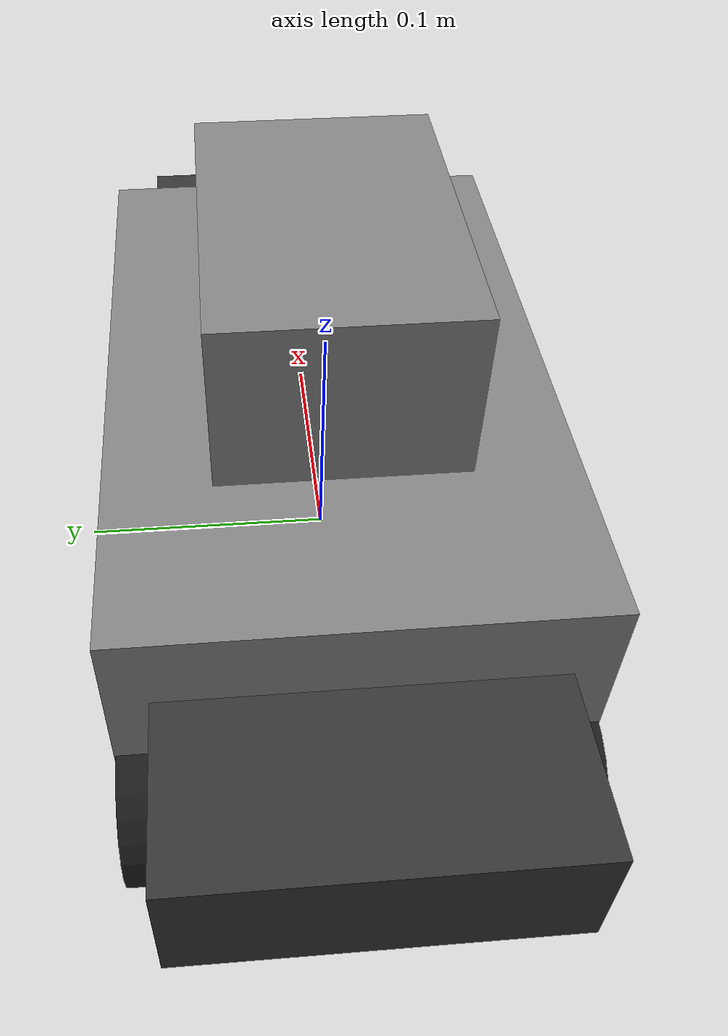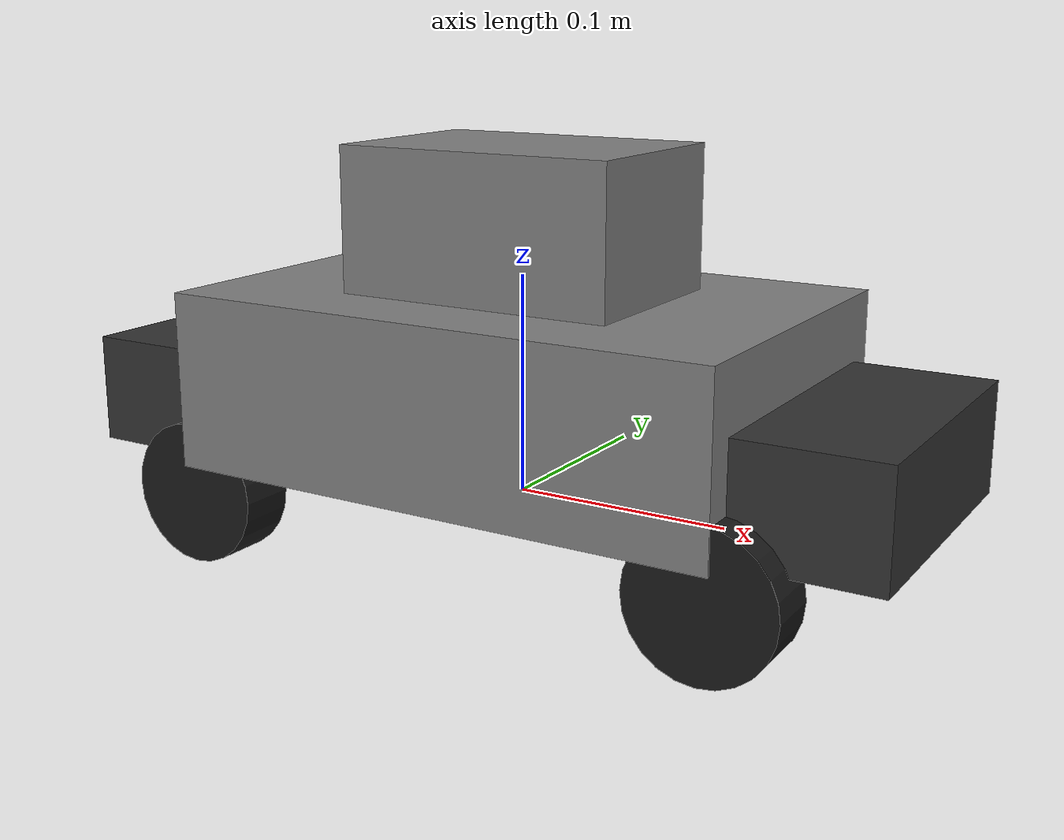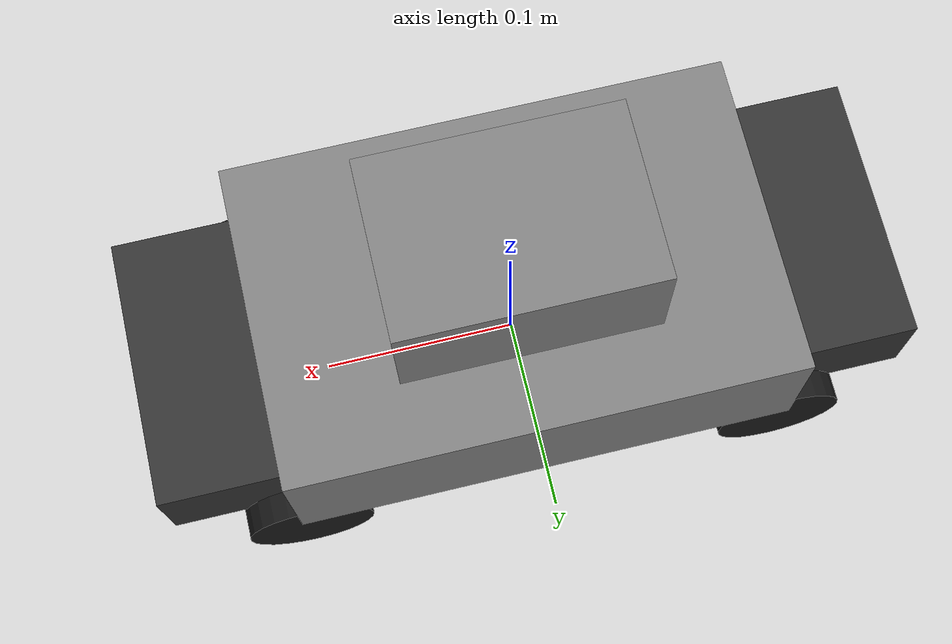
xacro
<?xml version="1.0"?>
<robot name="speedy" xmlns:xacro="http://www.ros.org/wiki/xacro">

  <!-- CARREGAMENTO DE PARÂMETROS                     -->
  <xacro:arg name="hardware_config_file" default="" />
  <xacro:property name="hw_config_path" value="$(arg hardware_config_file)" />

  <xacro:if value="${hw_config_path != ''}">
    <xacro:property name="hw_config" value="${xacro.load_yaml(hw_config_path)['speedy_hardware']['ros__parameters']}" />
    <xacro:property name="max_steer_angle_left"  value="${hw_config['max_steering_angle_left_deg']  * (pi / 180.0)}" />
    <xacro:property name="max_steer_angle_right" value="${hw_config['max_steering_angle_right_deg'] * (pi / 180.0)}" />
    <xacro:property name="wheelbase"    value="${hw_config['wheelbase']}" />
    <xacro:property name="wheel_radius" value="${hw_config['wheel_radius']}" />
  </xacro:if>
  <xacro:unless value="${hw_config_path != ''}">
    <xacro:property name="max_steer_angle_left"  value="0.785398" />
    <xacro:property name="max_steer_angle_right" value="0.785398" />
    <xacro:property name="wheelbase"    value="0.251" />
    <xacro:property name="wheel_radius" value="0.0325" />
    <xacro:property name="hw_config" value="${dict()}" />
  </xacro:unless>

  <!-- DIMENSÕES FÍSICAS (metros)                     -->
  <!--   Fonte: medições físicas do chassi            -->
  <!--   wheelbase e wheel_radius: hardware.yaml      -->

  <!-- Chassi principal -->
  <xacro:property name="chassis_length"   value="0.259"  />  <!-- 38.5 total - 2*6.3 bumper = 25.9 -->
  <xacro:property name="chassis_height"   value="0.080"  />  <!-- medido pelo usuário -->
  <xacro:property name="chassis_width"    value="0.166"  />

  <!-- Caixa do LiDAR no topo do chassi -->
  <xacro:property name="lidar_box_l"       value="0.130" />
  <xacro:property name="lidar_box_w"       value="0.090" />
  <xacro:property name="lidar_box_h"       value="0.065" />

  <!-- Rodas -->
  <xacro:property name="wheel_thickness"  value="0.026"  />
  <!-- distância do centro do chassi ao centro da roda (eixo Y) -->
  <xacro:property name="half_track"       value="0.0695" />
  <!-- quanto a roda projeta para cima, acima do topo do chassi -->
  <xacro:property name="wheel_projection" value="0.020"  />

  <!-- Pára-choques -->
  <xacro:property name="bumper_length"    value="0.063"  />  <!-- medido pelo usuário -->
  <xacro:property name="bumper_height"    value="0.050"  />  <!-- medido pelo usuário -->
  <xacro:property name="bumper_width"     value="0.137"  />
  <!-- Distância do eixo da roda até a extremidade do pára-choque (medido: 6.5cm) -->
  <xacro:property name="wheel_to_bumper_edge" value="0.065" />

  <!-- DESCRIÇÃO CINEMÁTICA                           -->

  <!-- base_link na altura do eixo das rodas, no ponto médio entre eixos -->
  <link name="base_link" />

  <!-- Eixo traseiro (tração) -->
  <link name="drive_wheel_link" />
  <joint name="drive_joint" type="continuous">
    <parent link="base_link"/>
    <child link="drive_wheel_link"/>
    <!-- Centraliza visualmente o wheelbase no chassi -->
    <origin xyz="${-wheelbase/2.0} 0 0" rpy="0 0 0"/>
    <axis xyz="0 1 0"/>
  </joint>

  <!-- Eixo dianteiro (direção) -->
  <link name="steering_link" />
  <joint name="steering_joint" type="revolute">
    <parent link="base_link"/>
    <child link="steering_link"/>
    <origin xyz="${wheelbase/2.0} 0 0" rpy="0 0 0"/>
    <axis xyz="0 0 1"/>
    <limit lower="${-max_steer_angle_right}" upper="${max_steer_angle_left}" effort="10.0" velocity="5.0"/>
  </joint>

  <!-- GEOMETRIA VISUAL E DE COLISÃO                  -->

  <!-- Chassi principal -->
  <link name="chassis_link">
    <visual>
      <geometry>
        <box size="${chassis_length} ${chassis_width} ${chassis_height}"/>
      </geometry>
      <material name="grey">
        <color rgba="0.5 0.5 0.5 1.0"/>
      </material>
    </visual>
    <collision>
      <geometry>
        <box size="${chassis_length} ${chassis_width} ${chassis_height}"/>
      </geometry>
    </collision>
  </link>

  <!-- centro do chassi: o fundo do chassi fica (wheel_radius - wheel_projection) acima do base_link -->
  <joint name="chassis_joint" type="fixed">
    <parent link="base_link"/>
    <child link="chassis_link"/>
    <origin xyz="0 0 ${wheel_radius - wheel_projection + chassis_height/2.0}" rpy="0 0 0"/>
  </joint>

  <!-- Caixa do LiDAR no topo -->
  <link name="lidar_box_link">
    <visual>
      <geometry>
        <box size="${lidar_box_l} ${lidar_box_w} ${lidar_box_h}"/>
      </geometry>
      <material name="grey"/>
    </visual>
  </link>
  <joint name="lidar_box_joint" type="fixed">
    <parent link="chassis_link"/>
    <child link="lidar_box_link"/>
    <origin xyz="0 0 ${chassis_height/2.0 + lidar_box_h/2.0}" rpy="0 0 0"/>
  </joint>

  <!-- Pára-choque dianteiro -->
  <link name="bumper_link">
    <visual>
      <geometry>
        <box size="${bumper_length} ${bumper_width} ${bumper_height}"/>
      </geometry>
      <material name="dark_grey">
        <color rgba="0.2 0.2 0.2 1.0"/>
      </material>
    </visual>
    <collision>
      <geometry>
        <box size="${bumper_length} ${bumper_width} ${bumper_height}"/>
      </geometry>
    </collision>
  </link>

  <joint name="bumper_joint" type="fixed">
    <parent link="base_link"/>
    <child link="bumper_link"/>
    <origin xyz="${chassis_length/2.0 + bumper_length/2.0} 0 ${wheel_radius - wheel_projection + bumper_height/2.0}" rpy="0 0 0"/>
  </joint>

  <!-- Pára-choque traseiro -->
  <link name="rear_bumper_link">
    <visual>
      <geometry>
        <box size="${bumper_length} ${bumper_width} ${bumper_height}"/>
      </geometry>
      <material name="dark_grey">
        <color rgba="0.2 0.2 0.2 1.0"/>
      </material>
    </visual>
    <collision>
      <geometry>
        <box size="${bumper_length} ${bumper_width} ${bumper_height}"/>
      </geometry>
    </collision>
  </link>

  <joint name="rear_bumper_joint" type="fixed">
    <parent link="base_link"/>
    <child link="rear_bumper_link"/>
    <origin xyz="${-(chassis_length/2.0 + bumper_length/2.0)} 0 ${wheel_radius - wheel_projection + bumper_height/2.0}" rpy="0 0 0"/>
  </joint>

  <!-- Roda traseira esquerda (+Y) -->
  <link name="rear_left_wheel_link">
    <visual>
      <geometry>
        <cylinder radius="${wheel_radius}" length="${wheel_thickness}"/>
      </geometry>
      <material name="black">
        <color rgba="0.1 0.1 0.1 1.0"/>
      </material>
    </visual>
    <collision>
      <geometry>
        <cylinder radius="${wheel_radius}" length="${wheel_thickness}"/>
      </geometry>
    </collision>
  </link>

  <joint name="rear_left_wheel_joint" type="fixed">
    <parent link="drive_wheel_link"/>
    <child link="rear_left_wheel_link"/>
    <origin xyz="0 ${half_track} 0" rpy="${-pi/2.0} 0 0"/>
  </joint>

  <!-- Roda traseira direita (−Y) -->
  <link name="rear_right_wheel_link">
    <visual>
      <geometry>
        <cylinder radius="${wheel_radius}" length="${wheel_thickness}"/>
      </geometry>
      <material name="black">
        <color rgba="0.1 0.1 0.1 1.0"/>
      </material>
    </visual>
    <collision>
      <geometry>
        <cylinder radius="${wheel_radius}" length="${wheel_thickness}"/>
      </geometry>
    </collision>
  </link>

  <joint name="rear_right_wheel_joint" type="fixed">
    <parent link="drive_wheel_link"/>
    <child link="rear_right_wheel_link"/>
    <origin xyz="0 ${-half_track} 0" rpy="${-pi/2.0} 0 0"/>
  </joint>

  <!-- Roda dianteira esquerda (+Y) -->
  <link name="front_left_wheel_link">
    <visual>
      <geometry>
        <cylinder radius="${wheel_radius}" length="${wheel_thickness}"/>
      </geometry>
      <material name="black">
        <color rgba="0.1 0.1 0.1 1.0"/>
      </material>
    </visual>
    <collision>
      <geometry>
        <cylinder radius="${wheel_radius}" length="${wheel_thickness}"/>
      </geometry>
    </collision>
  </link>

  <joint name="front_left_wheel_joint" type="continuous">
    <parent link="steering_link"/>
    <child link="front_left_wheel_link"/>
    <origin xyz="0 ${half_track} 0" rpy="${-pi/2.0} 0 0"/>
    <axis xyz="0 0 1"/>
  </joint>

  <!-- Roda dianteira direita (−Y) -->
  <link name="front_right_wheel_link">
    <visual>
      <geometry>
        <cylinder radius="${wheel_radius}" length="${wheel_thickness}"/>
      </geometry>
      <material name="black">
        <color rgba="0.1 0.1 0.1 1.0"/>
      </material>
    </visual>
    <collision>
      <geometry>
        <cylinder radius="${wheel_radius}" length="${wheel_thickness}"/>
      </geometry>
    </collision>
  </link>

  <joint name="front_right_wheel_joint" type="continuous">
    <parent link="steering_link"/>
    <child link="front_right_wheel_link"/>
    <origin xyz="0 ${-half_track} 0" rpy="${-pi/2.0} 0 0"/>
    <axis xyz="0 0 1"/>
  </joint>

  <!-- SENSORES                                        -->
  <!--   x: frente(+) / trás(−) desde base_link       -->
  <!--   y: esquerda(+) / direita(−)                  -->
  <!--   z: altura desde base_link (eixo das rodas)   -->

  <!-- LiDAR — centro do veículo, 8.5cm acima do topo do chassi -->
  <link name="laser_link"/>
  <joint name="laser_joint" type="fixed">
    <parent link="base_link"/>
    <child link="laser_link"/>
    <origin xyz="0.0 0.0 0.1775" rpy="0 0 0"/>
  </joint>

  <!-- IMU (MPU6050) — centro do chassi, ao nível do topo; pinos virados para trás -->
  <!-- rpy Z=pi: chip com pinos a Sul em padrão tem X a direita; com pinos para trás (−X) → rodar 180° em yaw -->
  <link name="imu_link"/>
  <joint name="imu_joint" type="fixed">
    <parent link="base_link"/>
    <child link="imu_link"/>
    <origin xyz="0.0 0.0 0.0925" rpy="0 0 ${pi}"/>
  </joint>

  <!-- Câmara — ~1cm atrás da junção chassi-parachoque frontal, 8cm acima do topo do parachoque -->
  <!-- Se câmara inclinada para baixo: ajustar pitch (ex: rpy="0 0.26 0" para ~15°) -->
  <link name="camera_link"/>
  <joint name="camera_joint" type="fixed">
    <parent link="base_link"/>
    <child link="camera_link"/>
    <origin xyz="0.116 0.0 0.104" rpy="0 0 0"/>
  </joint>

  <!-- CONFIGURAÇÃO DO ROS2_CONTROL                   -->
  <ros2_control name="SpeedySystem" type="system">
    <hardware>
      <plugin>speedy_control/SpeedyHardwareInterface</plugin>

      <xacro:if value="${hw_config_path != ''}">
        <param name="pin_motor_en_1">${hw_config['pin_motor_en_1']}</param>
        <param name="pin_motor_en_2">${hw_config['pin_motor_en_2']}</param>
        <param name="pin_motor_fwd_ch">${hw_config['pin_motor_fwd_ch']}</param>
        <param name="pin_motor_rev_ch">${hw_config['pin_motor_rev_ch']}</param>
        <param name="pin_servo">${hw_config['pin_servo']}</param>
        <param name="pin_hall">${hw_config['pin_hall']}</param>
        <param name="pin_hall_en">${hw_config['pin_hall_en']}</param>
        <param name="pin_hall_fl">${hw_config['pin_hall_fl']}</param>
        <param name="pin_hall_fr">${hw_config['pin_hall_fr']}</param>

        <param name="motor_period_ns">${hw_config['motor_period_ns']}</param>
        <param name="motor_min_effort">${hw_config['motor_min_effort']}</param>
        <param name="motor_deadband_ms">${hw_config['motor_deadband_ms']}</param>
        <param name="motor_invert_direction">${hw_config['motor_invert_direction']}</param>

        <param name="steering_center_pulse_ms">${hw_config['steering_center_pulse_ms']}</param>
        <param name="steering_max_deflection_ms">${hw_config['steering_max_deflection_ms']}</param>
        <param name="steering_max_speed_deg_per_sec">${hw_config['steering_max_speed_deg_per_sec']}</param>
        <param name="max_steering_angle_left_deg">${hw_config['max_steering_angle_left_deg']}</param>
        <param name="max_steering_angle_right_deg">${hw_config['max_steering_angle_right_deg']}</param>
        <param name="steering_trim_deg">${hw_config['steering_trim_deg']}</param>
        <param name="steering_invert_direction">${hw_config['steering_invert_direction']}</param>
        <param name="steering_use_polynomial">${hw_config['steering_use_polynomial']}</param>
        <param name="steering_poly_a0">${hw_config['steering_poly_a0']}</param>
        <param name="steering_poly_a1">${hw_config['steering_poly_a1']}</param>
        <param name="steering_poly_a2">${hw_config['steering_poly_a2']}</param>

        <param name="pid_kp">${hw_config['pid_kp']}</param>
        <param name="pid_ki">${hw_config['pid_ki']}</param>
        <param name="pid_kd">${hw_config['pid_kd']}</param>
        <param name="pid_deadband_m_s">${hw_config['pid_deadband_m_s']}</param>
        <param name="velocity_filter_alpha">${hw_config['velocity_filter_alpha']}</param>
        <param name="velocity_zero_timeout_ms">${hw_config['velocity_zero_timeout_ms']}</param>
        <param name="max_linear_velocity">${hw_config['max_linear_velocity']}</param>
        <param name="velocity_feedforward">${hw_config['velocity_feedforward']}</param>
        <param name="wheel_radius">${hw_config['wheel_radius']}</param>
        <param name="wheelbase">${hw_config['wheelbase']}</param>
        <param name="gear_ratio">${hw_config['gear_ratio']}</param>
        <param name="magnets_per_rev">${hw_config['magnets_per_rev']}</param>
        <param name="front_magnets_per_rev">${hw_config['front_magnets_per_rev']}</param>
      </xacro:if>
    </hardware>

    <joint name="drive_joint">
      <command_interface name="velocity"/>
      <state_interface name="velocity"/>
      <state_interface name="position"/>
    </joint>

    <joint name="steering_joint">
      <command_interface name="position"/>
      <state_interface name="position"/>
    </joint>

    <joint name="front_left_wheel_joint">
      <state_interface name="position"/>
      <state_interface name="velocity"/>
    </joint>
    <joint name="front_right_wheel_joint">
      <state_interface name="position"/>
      <state_interface name="velocity"/>
    </joint>
  </ros2_control>

</robot>
